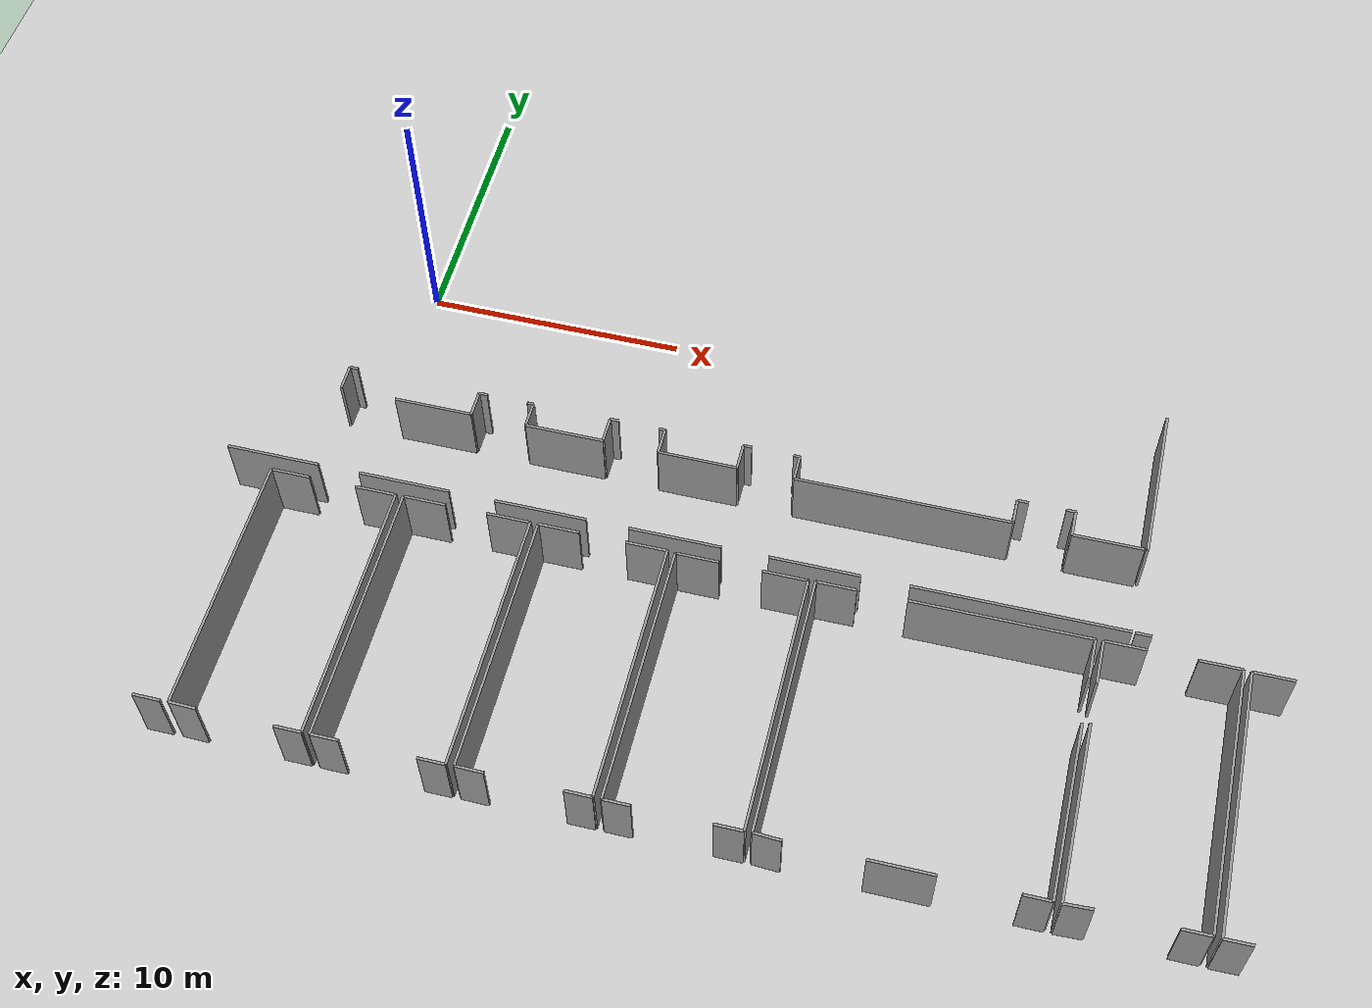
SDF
<sdf version="1.6">
 <world name="default">
  <model name="ground_plane">
   <static>1</static>
   <link name="link">
    <collision name="collision">
     <geometry><plane><normal>0 0 1</normal><size>100 100</size></plane></geometry>
     <surface><friction><ode><mu>100</mu><mu2>50</mu2></ode></friction></surface>
    </collision>
    <visual name="visual">
     <cast_shadows>0</cast_shadows>
     <geometry><plane><normal>0 0 1</normal><size>100 100</size></plane></geometry>
     <material>
      <script><uri>file://media/materials/scripts/gazebo.material</uri><name>Gazebo/Grey</name></script>
     </material>
    </visual>
   </link>
  </model>
  <model name="50055640">
   <static>1</static>
   <link name="Wall_182">
    <collision name="Wall_182_Collision">
     <geometry><box><size>0.993197624245 0.1 2.5</size></box></geometry>
     <pose>0.496598812122 0 1.25 0 0 0</pose>
    </collision>
    <visual name="Wall_182_Visual">
     <pose>0.496598812122 0 1.25 0 0 0</pose>
     <geometry><box><size>0.993197624245 0.1 2.5</size></box></geometry>
     <material>
      <script><uri>file://media/materials/scripts/gazebo.material</uri><name>Gazebo/Grey</name></script>
      <ambient>1 1 1 1</ambient>
     </material>
    </visual>
    <pose>68.9960150261 -27.5451038124 0 0 0 1.57079632679</pose>
   </link>
   <link name="Wall_183">
    <collision name="Wall_183_Collision">
     <geometry><box><size>0.320067008478 0.1 2.5</size></box></geometry>
     <pose>0.160033504239 0 1.25 0 0 0</pose>
    </collision>
    <visual name="Wall_183_Visual">
     <pose>0.160033504239 0 1.25 0 0 0</pose>
     <geometry><box><size>0.320067008478 0.1 2.5</size></box></geometry>
     <material>
      <script><uri>file://media/materials/scripts/gazebo.material</uri><name>Gazebo/Grey</name></script>
      <ambient>1 1 1 1</ambient>
     </material>
    </visual>
    <pose>68.9960150261 -26.5519061881 0 0 0 0.0</pose>
   </link>
   <link name="Wall_186">
    <collision name="Wall_186_Collision">
     <geometry><box><size>3.00116757196 0.1 2.5</size></box></geometry>
     <pose>1.50058378598 0 1.25 0 0 0</pose>
    </collision>
    <visual name="Wall_186_Visual">
     <pose>1.50058378598 0 1.25 0 0 0</pose>
     <geometry><box><size>3.00116757196 0.1 2.5</size></box></geometry>
     <material>
      <script><uri>file://media/materials/scripts/gazebo.material</uri><name>Gazebo/Grey</name></script>
      <ambient>1 1 1 1</ambient>
     </material>
    </visual>
    <pose>71.1640184781 -27.5787349612 0 0 0 0.0</pose>
   </link>
   <link name="Wall_187">
    <collision name="Wall_187_Collision">
     <geometry><box><size>1.00969592365 0.1 2.5</size></box></geometry>
     <pose>0.504847961825 0 1.25 0 0 0</pose>
    </collision>
    <visual name="Wall_187_Visual">
     <pose>0.504847961825 0 1.25 0 0 0</pose>
     <geometry><box><size>1.00969592365 0.1 2.5</size></box></geometry>
     <material>
      <script><uri>file://media/materials/scripts/gazebo.material</uri><name>Gazebo/Grey</name></script>
      <ambient>1 1 1 1</ambient>
     </material>
    </visual>
    <pose>74.1651860501 -27.5787349612 0 0 0 1.57079632679</pose>
   </link>
   <link name="Wall_188">
    <collision name="Wall_188_Collision">
     <geometry><box><size>0.325397228286 0.1 2.5</size></box></geometry>
     <pose>0.162698614143 0 1.25 0 0 0</pose>
    </collision>
    <visual name="Wall_188_Visual">
     <pose>0.162698614143 0 1.25 0 0 0</pose>
     <geometry><box><size>0.325397228286 0.1 2.5</size></box></geometry>
     <material>
      <script><uri>file://media/materials/scripts/gazebo.material</uri><name>Gazebo/Grey</name></script>
      <ambient>1 1 1 1</ambient>
     </material>
    </visual>
    <pose>74.1651860501 -26.5690390375 0 0 0 0.0</pose>
   </link>
   <link name="Wall_189">
    <collision name="Wall_189_Collision">
     <geometry><box><size>0.241128991319 0.1 2.5</size></box></geometry>
     <pose>0.12056449566 0 1.25 0 0 0</pose>
    </collision>
    <visual name="Wall_189_Visual">
     <pose>0.12056449566 0 1.25 0 0 0</pose>
     <geometry><box><size>0.241128991319 0.1 2.5</size></box></geometry>
     <material>
      <script><uri>file://media/materials/scripts/gazebo.material</uri><name>Gazebo/Grey</name></script>
      <ambient>1 1 1 1</ambient>
     </material>
    </visual>
    <pose>76.0627443017 -26.5690390375 0 0 0 0.0</pose>
   </link>
   <link name="Wall_190">
    <collision name="Wall_190_Collision">
     <geometry><box><size>1.01299558353 0.1 2.5</size></box></geometry>
     <pose>0.506497791766 0 1.25 0 0 0</pose>
    </collision>
    <visual name="Wall_190_Visual">
     <pose>0.506497791766 0 1.25 0 0 0</pose>
     <geometry><box><size>1.01299558353 0.1 2.5</size></box></geometry>
     <material>
      <script><uri>file://media/materials/scripts/gazebo.material</uri><name>Gazebo/Grey</name></script>
      <ambient>1 1 1 1</ambient>
     </material>
    </visual>
    <pose>76.3038732931 -26.5690390375 0 0 0 -1.57079632679</pose>
   </link>
   <link name="Wall_191">
    <collision name="Wall_191_Collision">
     <geometry><box><size>3.00776689172 0.1 2.5</size></box></geometry>
     <pose>1.50388344586 0 1.25 0 0 0</pose>
    </collision>
    <visual name="Wall_191_Visual">
     <pose>1.50388344586 0 1.25 0 0 0</pose>
     <geometry><box><size>3.00776689172 0.1 2.5</size></box></geometry>
     <material>
      <script><uri>file://media/materials/scripts/gazebo.material</uri><name>Gazebo/Grey</name></script>
      <ambient>1 1 1 1</ambient>
     </material>
    </visual>
    <pose>76.3038732931 -27.582034621 0 0 0 0.0</pose>
   </link>
   <link name="Wall_192">
    <collision name="Wall_192_Collision">
     <geometry><box><size>1.01908726331 0.1 2.5</size></box></geometry>
     <pose>0.509543631656 0 1.25 0 0 0</pose>
    </collision>
    <visual name="Wall_192_Visual">
     <pose>0.509543631656 0 1.25 0 0 0</pose>
     <geometry><box><size>1.01908726331 0.1 2.5</size></box></geometry>
     <material>
      <script><uri>file://media/materials/scripts/gazebo.material</uri><name>Gazebo/Grey</name></script>
      <ambient>1 1 1 1</ambient>
     </material>
    </visual>
    <pose>79.3116401848 -27.582034621 0 0 0 1.57079632679</pose>
   </link>
   <link name="Wall_193">
    <collision name="Wall_193_Collision">
     <geometry><box><size>0.331488908066 0.1 2.5</size></box></geometry>
     <pose>0.165744454033 0 1.25 0 0 0</pose>
    </collision>
    <visual name="Wall_193_Visual">
     <pose>0.165744454033 0 1.25 0 0 0</pose>
     <geometry><box><size>0.331488908066 0.1 2.5</size></box></geometry>
     <material>
      <script><uri>file://media/materials/scripts/gazebo.material</uri><name>Gazebo/Grey</name></script>
      <ambient>1 1 1 1</ambient>
     </material>
    </visual>
    <pose>79.3116401848 -26.5629473577 0 0 0 0.0</pose>
   </link>
   <link name="Wall_194">
    <collision name="Wall_194_Collision">
     <geometry><box><size>0.230341641708 0.1 2.5</size></box></geometry>
     <pose>0.115170820854 0 1.25 0 0 0</pose>
    </collision>
    <visual name="Wall_194_Visual">
     <pose>0.115170820854 0 1.25 0 0 0</pose>
     <geometry><box><size>0.230341641708 0.1 2.5</size></box></geometry>
     <material>
      <script><uri>file://media/materials/scripts/gazebo.material</uri><name>Gazebo/Grey</name></script>
      <ambient>1 1 1 1</ambient>
     </material>
    </visual>
    <pose>81.2124980964 -26.5629473577 0 0 0 0.0</pose>
   </link>
   <link name="Wall_195">
    <collision name="Wall_195_Collision">
     <geometry><box><size>1.03203208285 0.1 2.5</size></box></geometry>
     <pose>0.516016041423 0 1.25 0 0 0</pose>
    </collision>
    <visual name="Wall_195_Visual">
     <pose>0.516016041423 0 1.25 0 0 0</pose>
     <geometry><box><size>1.03203208285 0.1 2.5</size></box></geometry>
     <material>
      <script><uri>file://media/materials/scripts/gazebo.material</uri><name>Gazebo/Grey</name></script>
      <ambient>1 1 1 1</ambient>
     </material>
    </visual>
    <pose>81.4428397381 -26.5629473577 0 0 0 -1.57079632679</pose>
   </link>
   <link name="Wall_196">
    <collision name="Wall_196_Collision">
     <geometry><box><size>3.01322402152 0.1 2.5</size></box></geometry>
     <pose>1.50661201076 0 1.25 0 0 0</pose>
    </collision>
    <visual name="Wall_196_Visual">
     <pose>1.50661201076 0 1.25 0 0 0</pose>
     <geometry><box><size>3.01322402152 0.1 2.5</size></box></geometry>
     <material>
      <script><uri>file://media/materials/scripts/gazebo.material</uri><name>Gazebo/Grey</name></script>
      <ambient>1 1 1 1</ambient>
     </material>
    </visual>
    <pose>81.4428397381 -27.5949794406 0 0 0 0.0</pose>
   </link>
   <link name="Wall_197">
    <collision name="Wall_197_Collision">
     <geometry><box><size>1.03355500279 0.1 2.5</size></box></geometry>
     <pose>0.516777501396 0 1.25 0 0 0</pose>
    </collision>
    <visual name="Wall_197_Visual">
     <pose>0.516777501396 0 1.25 0 0 0</pose>
     <geometry><box><size>1.03355500279 0.1 2.5</size></box></geometry>
     <material>
      <script><uri>file://media/materials/scripts/gazebo.material</uri><name>Gazebo/Grey</name></script>
      <ambient>1 1 1 1</ambient>
     </material>
    </visual>
    <pose>84.4560637596 -27.5949794406 0 0 0 1.57079632679</pose>
   </link>
   <link name="Wall_198">
    <collision name="Wall_198_Collision">
     <geometry><box><size>0.324381948322 0.1 2.5</size></box></geometry>
     <pose>0.162190974161 0 1.25 0 0 0</pose>
    </collision>
    <visual name="Wall_198_Visual">
     <pose>0.162190974161 0 1.25 0 0 0</pose>
     <geometry><box><size>0.324381948322 0.1 2.5</size></box></geometry>
     <material>
      <script><uri>file://media/materials/scripts/gazebo.material</uri><name>Gazebo/Grey</name></script>
      <ambient>1 1 1 1</ambient>
     </material>
    </visual>
    <pose>84.4560637596 -26.5614244378 0 0 0 0.0</pose>
   </link>
   <link name="Wall_199">
    <collision name="Wall_199_Collision">
     <geometry><box><size>0.241128991319 0.1 2.5</size></box></geometry>
     <pose>0.12056449566 0 1.25 0 0 0</pose>
    </collision>
    <visual name="Wall_199_Visual">
     <pose>0.12056449566 0 1.25 0 0 0</pose>
     <geometry><box><size>0.241128991319 0.1 2.5</size></box></geometry>
     <material>
      <script><uri>file://media/materials/scripts/gazebo.material</uri><name>Gazebo/Grey</name></script>
      <ambient>1 1 1 1</ambient>
     </material>
    </visual>
    <pose>86.3678359308 -26.5614244378 0 0 0 0.0</pose>
   </link>
   <link name="Wall_200">
    <collision name="Wall_200_Collision">
     <geometry><box><size>1.00791918371 0.1 2.5</size></box></geometry>
     <pose>0.503959591857 0 1.25 0 0 0</pose>
    </collision>
    <visual name="Wall_200_Visual">
     <pose>0.503959591857 0 1.25 0 0 0</pose>
     <geometry><box><size>1.00791918371 0.1 2.5</size></box></geometry>
     <material>
      <script><uri>file://media/materials/scripts/gazebo.material</uri><name>Gazebo/Grey</name></script>
      <ambient>1 1 1 1</ambient>
     </material>
    </visual>
    <pose>86.6089649221 -26.5614244378 0 0 0 -1.57079632679</pose>
   </link>
   <link name="Wall_201">
    <collision name="Wall_201_Collision">
     <geometry><box><size>8.14762170669 0.1 2.5</size></box></geometry>
     <pose>4.07381085334 0 1.25 0 0 0</pose>
    </collision>
    <visual name="Wall_201_Visual">
     <pose>4.07381085334 0 1.25 0 0 0</pose>
     <geometry><box><size>8.14762170669 0.1 2.5</size></box></geometry>
     <material>
      <script><uri>file://media/materials/scripts/gazebo.material</uri><name>Gazebo/Grey</name></script>
      <ambient>1 1 1 1</ambient>
     </material>
    </visual>
    <pose>86.6089649221 -27.5693436215 0 0 0 0.0</pose>
   </link>
   <link name="Wall_202">
    <collision name="Wall_202_Collision">
     <geometry><box><size>0.989897964364 0.1 2.5</size></box></geometry>
     <pose>0.494948982182 0 1.25 0 0 0</pose>
    </collision>
    <visual name="Wall_202_Visual">
     <pose>0.494948982182 0 1.25 0 0 0</pose>
     <geometry><box><size>0.989897964364 0.1 2.5</size></box></geometry>
     <material>
      <script><uri>file://media/materials/scripts/gazebo.material</uri><name>Gazebo/Grey</name></script>
      <ambient>1 1 1 1</ambient>
     </material>
    </visual>
    <pose>94.7565866288 -27.5693436215 0 0 0 1.57079632679</pose>
   </link>
   <link name="Wall_203">
    <collision name="Wall_203_Collision">
     <geometry><box><size>0.418802984923 0.1 2.5</size></box></geometry>
     <pose>0.209401492462 0 1.25 0 0 0</pose>
    </collision>
    <visual name="Wall_203_Visual">
     <pose>0.209401492462 0 1.25 0 0 0</pose>
     <geometry><box><size>0.418802984923 0.1 2.5</size></box></geometry>
     <material>
      <script><uri>file://media/materials/scripts/gazebo.material</uri><name>Gazebo/Grey</name></script>
      <ambient>1 1 1 1</ambient>
     </material>
    </visual>
    <pose>94.7565866288 -26.5794456571 0 0 0 0.0</pose>
   </link>
   <link name="Wall_204">
    <collision name="Wall_204_Collision">
     <geometry><box><size>0.35306360729 0.1 2.5</size></box></geometry>
     <pose>0.176531803645 0 1.25 0 0 0</pose>
    </collision>
    <visual name="Wall_204_Visual">
     <pose>0.176531803645 0 1.25 0 0 0</pose>
     <geometry><box><size>0.35306360729 0.1 2.5</size></box></geometry>
     <material>
      <script><uri>file://media/materials/scripts/gazebo.material</uri><name>Gazebo/Grey</name></script>
      <ambient>1 1 1 1</ambient>
     </material>
    </visual>
    <pose>96.5521092441 -26.5794456571 0 0 0 0.0</pose>
   </link>
   <link name="Wall_205">
    <collision name="Wall_205_Collision">
     <geometry><box><size>1.02073709325 0.1 2.5</size></box></geometry>
     <pose>0.510368546627 0 1.25 0 0 0</pose>
    </collision>
    <visual name="Wall_205_Visual">
     <pose>0.510368546627 0 1.25 0 0 0</pose>
     <geometry><box><size>1.02073709325 0.1 2.5</size></box></geometry>
     <material>
      <script><uri>file://media/materials/scripts/gazebo.material</uri><name>Gazebo/Grey</name></script>
      <ambient>1 1 1 1</ambient>
     </material>
    </visual>
    <pose>96.9051728514 -26.5794456571 0 0 0 -1.57079632679</pose>
   </link>
   <link name="Wall_206">
    <collision name="Wall_206_Collision">
     <geometry><box><size>2.6361744251 0.1 2.5</size></box></geometry>
     <pose>1.31808721255 0 1.25 0 0 0</pose>
    </collision>
    <visual name="Wall_206_Visual">
     <pose>1.31808721255 0 1.25 0 0 0</pose>
     <geometry><box><size>2.6361744251 0.1 2.5</size></box></geometry>
     <material>
      <script><uri>file://media/materials/scripts/gazebo.material</uri><name>Gazebo/Grey</name></script>
      <ambient>1 1 1 1</ambient>
     </material>
    </visual>
    <pose>96.9051728514 -27.6001827504 0 0 0 0.0</pose>
   </link>
   <link name="Wall_207">
    <collision name="Wall_207_Collision">
     <geometry><box><size>7.9278135946 0.1 2.5</size></box></geometry>
     <pose>3.9639067973 0 1.25 0 0 0</pose>
    </collision>
    <visual name="Wall_207_Visual">
     <pose>3.9639067973 0 1.25 0 0 0</pose>
     <geometry><box><size>7.9278135946 0.1 2.5</size></box></geometry>
     <material>
      <script><uri>file://media/materials/scripts/gazebo.material</uri><name>Gazebo/Grey</name></script>
      <ambient>1 1 1 1</ambient>
     </material>
    </visual>
    <pose>99.5413472765 -31.1096248541 0 0 0 3.14159265359</pose>
   </link>
   <link name="Wall_208">
    <collision name="Wall_208_Collision">
     <geometry><box><size>3.37948626834 0.1 2.5</size></box></geometry>
     <pose>1.68974313417 0 1.25 0 0 0</pose>
    </collision>
    <visual name="Wall_208_Visual">
     <pose>1.68974313417 0 1.25 0 0 0</pose>
     <geometry><box><size>3.37948626834 0.1 2.5</size></box></geometry>
     <material>
      <script><uri>file://media/materials/scripts/gazebo.material</uri><name>Gazebo/Grey</name></script>
      <ambient>1 1 1 1</ambient>
     </material>
    </visual>
    <pose>89.8361591959 -31.1096248541 0 0 0 3.14159265359</pose>
   </link>
   <link name="Wall_209">
    <collision name="Wall_209_Collision">
     <geometry><box><size>3.45588608559 0.1 2.5</size></box></geometry>
     <pose>1.72794304279 0 1.25 0 0 0</pose>
    </collision>
    <visual name="Wall_209_Visual">
     <pose>1.72794304279 0 1.25 0 0 0</pose>
     <geometry><box><size>3.45588608559 0.1 2.5</size></box></geometry>
     <material>
      <script><uri>file://media/materials/scripts/gazebo.material</uri><name>Gazebo/Grey</name></script>
      <ambient>1 1 1 1</ambient>
     </material>
    </visual>
    <pose>84.7015076907 -31.1096248541 0 0 0 3.14159265359</pose>
   </link>
   <link name="Wall_210">
    <collision name="Wall_210_Collision">
     <geometry><box><size>3.47098837504 0.1 2.5</size></box></geometry>
     <pose>1.73549418752 0 1.25 0 0 0</pose>
    </collision>
    <visual name="Wall_210_Visual">
     <pose>1.73549418752 0 1.25 0 0 0</pose>
     <geometry><box><size>3.47098837504 0.1 2.5</size></box></geometry>
     <material>
      <script><uri>file://media/materials/scripts/gazebo.material</uri><name>Gazebo/Grey</name></script>
      <ambient>1 1 1 1</ambient>
     </material>
    </visual>
    <pose>79.6492207726 -31.1096248541 0 0 0 3.14159265359</pose>
   </link>
   <link name="Wall_211">
    <collision name="Wall_211_Collision">
     <geometry><box><size>3.47961825473 0.1 2.5</size></box></geometry>
     <pose>1.73980912737 0 1.25 0 0 0</pose>
    </collision>
    <visual name="Wall_211_Visual">
     <pose>1.73980912737 0 1.25 0 0 0</pose>
     <geometry><box><size>3.47961825473 0.1 2.5</size></box></geometry>
     <material>
      <script><uri>file://media/materials/scripts/gazebo.material</uri><name>Gazebo/Grey</name></script>
      <ambient>1 1 1 1</ambient>
     </material>
    </visual>
    <pose>74.4238286207 -31.1096248541 0 0 0 3.14159265359</pose>
   </link>
   <link name="Wall_212">
    <collision name="Wall_212_Collision">
     <geometry><box><size>3.55474897203 0.1 2.5</size></box></geometry>
     <pose>1.77737448601 0 1.25 0 0 0</pose>
    </collision>
    <visual name="Wall_212_Visual">
     <pose>1.77737448601 0 1.25 0 0 0</pose>
     <geometry><box><size>3.55474897203 0.1 2.5</size></box></geometry>
     <material>
      <script><uri>file://media/materials/scripts/gazebo.material</uri><name>Gazebo/Grey</name></script>
      <ambient>1 1 1 1</ambient>
     </material>
    </visual>
    <pose>69.3587237931 -31.1096248541 0 0 0 3.14159265359</pose>
   </link>
   <link name="Wall_270">
    <collision name="Wall_270_Collision">
     <geometry><box><size>9.94910909183 0.1 2.5</size></box></geometry>
     <pose>4.97455454592 0 1.25 0 0 0</pose>
    </collision>
    <visual name="Wall_270_Visual">
     <pose>4.97455454592 0 1.25 0 0 0</pose>
     <geometry><box><size>9.94910909183 0.1 2.5</size></box></geometry>
     <material>
      <script><uri>file://media/materials/scripts/gazebo.material</uri><name>Gazebo/Grey</name></script>
      <ambient>1 1 1 1</ambient>
     </material>
    </visual>
    <pose>83.1509213666 -41.6917610031 0 0 0 1.57079632679</pose>
   </link>
   <link name="Wall_271">
    <collision name="Wall_271_Collision">
     <geometry><box><size>1.62013300168 0.1 2.5</size></box></geometry>
     <pose>0.810066500838 0 1.25 0 0 0</pose>
    </collision>
    <visual name="Wall_271_Visual">
     <pose>0.810066500838 0 1.25 0 0 0</pose>
     <geometry><box><size>1.62013300168 0.1 2.5</size></box></geometry>
     <material>
      <script><uri>file://media/materials/scripts/gazebo.material</uri><name>Gazebo/Grey</name></script>
      <ambient>1 1 1 1</ambient>
     </material>
    </visual>
    <pose>83.1509213666 -31.7426519113 0 0 0 0.0</pose>
   </link>
   <link name="Wall_272">
    <collision name="Wall_272_Collision">
     <geometry><box><size>1.68841057922 0.1 2.5</size></box></geometry>
     <pose>0.844205289609 0 1.25 0 0 0</pose>
    </collision>
    <visual name="Wall_272_Visual">
     <pose>0.844205289609 0 1.25 0 0 0</pose>
     <geometry><box><size>1.68841057922 0.1 2.5</size></box></geometry>
     <material>
      <script><uri>file://media/materials/scripts/gazebo.material</uri><name>Gazebo/Grey</name></script>
      <ambient>1 1 1 1</ambient>
     </material>
    </visual>
    <pose>86.3551449312 -31.7426519113 0 0 0 0.0</pose>
   </link>
   <link name="Wall_273">
    <collision name="Wall_273_Collision">
     <geometry><box><size>9.9501243718 0.1 2.5</size></box></geometry>
     <pose>4.9750621859 0 1.25 0 0 0</pose>
    </collision>
    <visual name="Wall_273_Visual">
     <pose>4.9750621859 0 1.25 0 0 0</pose>
     <geometry><box><size>9.9501243718 0.1 2.5</size></box></geometry>
     <material>
      <script><uri>file://media/materials/scripts/gazebo.material</uri><name>Gazebo/Grey</name></script>
      <ambient>1 1 1 1</ambient>
     </material>
    </visual>
    <pose>88.0435555104 -31.7426519113 0 0 0 -1.57079632679</pose>
   </link>
   <link name="Wall_274">
    <collision name="Wall_274_Collision">
     <geometry><box><size>1.07035890147 0.1 2.5</size></box></geometry>
     <pose>0.535179450734 0 1.25 0 0 0</pose>
    </collision>
    <visual name="Wall_274_Visual">
     <pose>0.535179450734 0 1.25 0 0 0</pose>
     <geometry><box><size>1.07035890147 0.1 2.5</size></box></geometry>
     <material>
      <script><uri>file://media/materials/scripts/gazebo.material</uri><name>Gazebo/Grey</name></script>
      <ambient>1 1 1 1</ambient>
     </material>
    </visual>
    <pose>88.0435555104 -41.6927762831 0 0 0 3.14159265359</pose>
   </link>
   <link name="Wall_275">
    <collision name="Wall_275_Collision">
     <geometry><box><size>1.00817351492 0.1 2.5</size></box></geometry>
     <pose>0.504086757462 0 1.25 0 0 0</pose>
    </collision>
    <visual name="Wall_275_Visual">
     <pose>0.504086757462 0 1.25 0 0 0</pose>
     <geometry><box><size>1.00817351492 0.1 2.5</size></box></geometry>
     <material>
      <script><uri>file://media/materials/scripts/gazebo.material</uri><name>Gazebo/Grey</name></script>
      <ambient>1 1 1 1</ambient>
     </material>
    </visual>
    <pose>84.1590943703 -41.6927762831 0 0 0 3.14058560458</pose>
   </link>
   <link name="Wall_276">
    <collision name="Wall_276_Collision">
     <geometry><box><size>9.97004924108 0.1 2.5</size></box></geometry>
     <pose>4.98502462054 0 1.25 0 0 0</pose>
    </collision>
    <visual name="Wall_276_Visual">
     <pose>4.98502462054 0 1.25 0 0 0</pose>
     <geometry><box><size>9.97004924108 0.1 2.5</size></box></geometry>
     <material>
      <script><uri>file://media/materials/scripts/gazebo.material</uri><name>Gazebo/Grey</name></script>
      <ambient>1 1 1 1</ambient>
     </material>
    </visual>
    <pose>78.0044672318 -41.6817351135 0 0 0 1.57079632679</pose>
   </link>
   <link name="Wall_277">
    <collision name="Wall_277_Collision">
     <geometry><box><size>1.55756637393 0.1 2.5</size></box></geometry>
     <pose>0.778783186964 0 1.25 0 0 0</pose>
    </collision>
    <visual name="Wall_277_Visual">
     <pose>0.778783186964 0 1.25 0 0 0</pose>
     <geometry><box><size>1.55756637393 0.1 2.5</size></box></geometry>
     <material>
      <script><uri>file://media/materials/scripts/gazebo.material</uri><name>Gazebo/Grey</name></script>
      <ambient>1 1 1 1</ambient>
     </material>
    </visual>
    <pose>78.0044672318 -31.7116858724 0 0 0 0.0</pose>
   </link>
   <link name="Wall_278">
    <collision name="Wall_278_Collision">
     <geometry><box><size>1.5528707041 0.1 2.5</size></box></geometry>
     <pose>0.776435352048 0 1.25 0 0 0</pose>
    </collision>
    <visual name="Wall_278_Visual">
     <pose>0.776435352048 0 1.25 0 0 0</pose>
     <geometry><box><size>1.5528707041 0.1 2.5</size></box></geometry>
     <material>
      <script><uri>file://media/materials/scripts/gazebo.material</uri><name>Gazebo/Grey</name></script>
      <ambient>1 1 1 1</ambient>
     </material>
    </visual>
    <pose>81.2975277933 -31.7116858724 0 0 0 0.0</pose>
   </link>
   <link name="Wall_279">
    <collision name="Wall_279_Collision">
     <geometry><box><size>9.98312097061 0.1 2.5</size></box></geometry>
     <pose>4.9915604853 0 1.25 0 0 0</pose>
    </collision>
    <visual name="Wall_279_Visual">
     <pose>4.9915604853 0 1.25 0 0 0</pose>
     <geometry><box><size>9.98312097061 0.1 2.5</size></box></geometry>
     <material>
      <script><uri>file://media/materials/scripts/gazebo.material</uri><name>Gazebo/Grey</name></script>
      <ambient>1 1 1 1</ambient>
     </material>
    </visual>
    <pose>82.8503984974 -31.7116858724 0 0 0 -1.57079632679</pose>
   </link>
   <link name="Wall_280">
    <collision name="Wall_280_Collision">
     <geometry><box><size>1.01489923346 0.1 2.5</size></box></geometry>
     <pose>0.507449616732 0 1.25 0 0 0</pose>
    </collision>
    <visual name="Wall_280_Visual">
     <pose>0.507449616732 0 1.25 0 0 0</pose>
     <geometry><box><size>1.01489923346 0.1 2.5</size></box></geometry>
     <material>
      <script><uri>file://media/materials/scripts/gazebo.material</uri><name>Gazebo/Grey</name></script>
      <ambient>1 1 1 1</ambient>
     </material>
    </visual>
    <pose>82.8503984974 -41.694806843 0 0 0 3.14159265359</pose>
   </link>
   <link name="Wall_281">
    <collision name="Wall_281_Collision">
     <geometry><box><size>1.04213995612 0.1 2.5</size></box></geometry>
     <pose>0.521069978058 0 1.25 0 0 0</pose>
    </collision>
    <visual name="Wall_281_Visual">
     <pose>0.521069978058 0 1.25 0 0 0</pose>
     <geometry><box><size>1.04213995612 0.1 2.5</size></box></geometry>
     <material>
      <script><uri>file://media/materials/scripts/gazebo.material</uri><name>Gazebo/Grey</name></script>
      <ambient>1 1 1 1</ambient>
     </material>
    </visual>
    <pose>79.0465252043 -41.694806843 0 0 0 3.1290491634</pose>
   </link>
   <link name="Wall_282">
    <collision name="Wall_282_Collision">
     <geometry><box><size>9.99098939032 0.1 2.5</size></box></geometry>
     <pose>4.99549469516 0 1.25 0 0 0</pose>
    </collision>
    <visual name="Wall_282_Visual">
     <pose>4.99549469516 0 1.25 0 0 0</pose>
     <geometry><box><size>9.99098939032 0.1 2.5</size></box></geometry>
     <material>
      <script><uri>file://media/materials/scripts/gazebo.material</uri><name>Gazebo/Grey</name></script>
      <ambient>1 1 1 1</ambient>
     </material>
    </visual>
    <pose>72.8652469669 -41.7026752627 0 0 0 1.57079632679</pose>
   </link>
   <link name="Wall_283">
    <collision name="Wall_283_Collision">
     <geometry><box><size>1.62038682167 0.1 2.5</size></box></geometry>
     <pose>0.810193410833 0 1.25 0 0 0</pose>
    </collision>
    <visual name="Wall_283_Visual">
     <pose>0.810193410833 0 1.25 0 0 0</pose>
     <geometry><box><size>1.62038682167 0.1 2.5</size></box></geometry>
     <material>
      <script><uri>file://media/materials/scripts/gazebo.material</uri><name>Gazebo/Grey</name></script>
      <ambient>1 1 1 1</ambient>
     </material>
    </visual>
    <pose>72.8652469669 -31.7116858724 0 0 0 0.0</pose>
   </link>
   <link name="Wall_284">
    <collision name="Wall_284_Collision">
     <geometry><box><size>1.65439870044 0.1 2.5</size></box></geometry>
     <pose>0.827199350221 0 1.25 0 0 0</pose>
    </collision>
    <visual name="Wall_284_Visual">
     <pose>0.827199350221 0 1.25 0 0 0</pose>
     <geometry><box><size>1.65439870044 0.1 2.5</size></box></geometry>
     <material>
      <script><uri>file://media/materials/scripts/gazebo.material</uri><name>Gazebo/Grey</name></script>
      <ambient>1 1 1 1</ambient>
     </material>
    </visual>
    <pose>76.0586831819 -31.7116858724 0 0 0 0.0</pose>
   </link>
   <link name="Wall_285">
    <collision name="Wall_285_Collision">
     <geometry><box><size>9.98946647038 0.1 2.5</size></box></geometry>
     <pose>4.99473323519 0 1.25 0 0 0</pose>
    </collision>
    <visual name="Wall_285_Visual">
     <pose>4.99473323519 0 1.25 0 0 0</pose>
     <geometry><box><size>9.98946647038 0.1 2.5</size></box></geometry>
     <material>
      <script><uri>file://media/materials/scripts/gazebo.material</uri><name>Gazebo/Grey</name></script>
      <ambient>1 1 1 1</ambient>
     </material>
    </visual>
    <pose>77.7130818823 -31.7116858724 0 0 0 -1.57079632679</pose>
   </link>
   <link name="Wall_286">
    <collision name="Wall_286_Collision">
     <geometry><box><size>1.01997563328 0.1 2.5</size></box></geometry>
     <pose>0.50998781664 0 1.25 0 0 0</pose>
    </collision>
    <visual name="Wall_286_Visual">
     <pose>0.50998781664 0 1.25 0 0 0</pose>
     <geometry><box><size>1.01997563328 0.1 2.5</size></box></geometry>
     <material>
      <script><uri>file://media/materials/scripts/gazebo.material</uri><name>Gazebo/Grey</name></script>
      <ambient>1 1 1 1</ambient>
     </material>
    </visual>
    <pose>77.7130818823 -41.7011523428 0 0 0 3.14159265359</pose>
   </link>
   <link name="Wall_287">
    <collision name="Wall_287_Collision">
     <geometry><box><size>1.03507904308 0.1 2.5</size></box></geometry>
     <pose>0.51753952154 0 1.25 0 0 0</pose>
    </collision>
    <visual name="Wall_287_Visual">
     <pose>0.51753952154 0 1.25 0 0 0</pose>
     <geometry><box><size>1.03507904308 0.1 2.5</size></box></geometry>
     <material>
      <script><uri>file://media/materials/scripts/gazebo.material</uri><name>Gazebo/Grey</name></script>
      <ambient>1 1 1 1</ambient>
     </material>
    </visual>
    <pose>73.9003248896 -41.7011523428 0 0 0 -3.14012134519</pose>
   </link>
   <link name="Wall_288">
    <collision name="Wall_288_Collision">
     <geometry><box><size>9.96091172141 0.1 2.5</size></box></geometry>
     <pose>4.9804558607 0 1.25 0 0 0</pose>
    </collision>
    <visual name="Wall_288_Visual">
     <pose>4.9804558607 0 1.25 0 0 0</pose>
     <geometry><box><size>9.96091172141 0.1 2.5</size></box></geometry>
     <material>
      <script><uri>file://media/materials/scripts/gazebo.material</uri><name>Gazebo/Grey</name></script>
      <ambient>1 1 1 1</ambient>
     </material>
    </visual>
    <pose>67.7394791614 -41.6822427534 0 0 0 1.57079632679</pose>
   </link>
   <link name="Wall_289">
    <collision name="Wall_289_Collision">
     <geometry><box><size>1.50654855576 0.1 2.5</size></box></geometry>
     <pose>0.753274277882 0 1.25 0 0 0</pose>
    </collision>
    <visual name="Wall_289_Visual">
     <pose>0.753274277882 0 1.25 0 0 0</pose>
     <geometry><box><size>1.50654855576 0.1 2.5</size></box></geometry>
     <material>
      <script><uri>file://media/materials/scripts/gazebo.material</uri><name>Gazebo/Grey</name></script>
      <ambient>1 1 1 1</ambient>
     </material>
    </visual>
    <pose>67.7394791614 -31.721331032 0 0 0 0.0</pose>
   </link>
   <link name="Wall_290">
    <collision name="Wall_290_Collision">
     <geometry><box><size>1.55452053404 0.1 2.5</size></box></geometry>
     <pose>0.777260267019 0 1.25 0 0 0</pose>
    </collision>
    <visual name="Wall_290_Visual">
     <pose>0.777260267019 0 1.25 0 0 0</pose>
     <geometry><box><size>1.55452053404 0.1 2.5</size></box></geometry>
     <material>
      <script><uri>file://media/materials/scripts/gazebo.material</uri><name>Gazebo/Grey</name></script>
      <ambient>1 1 1 1</ambient>
     </material>
    </visual>
    <pose>71.0213716432 -31.721331032 0 0 0 0.0</pose>
   </link>
   <link name="Wall_291">
    <collision name="Wall_291_Collision">
     <geometry><box><size>9.98464389055 0.1 2.5</size></box></geometry>
     <pose>4.99232194528 0 1.25 0 0 0</pose>
    </collision>
    <visual name="Wall_291_Visual">
     <pose>4.99232194528 0 1.25 0 0 0</pose>
     <geometry><box><size>9.98464389055 0.1 2.5</size></box></geometry>
     <material>
      <script><uri>file://media/materials/scripts/gazebo.material</uri><name>Gazebo/Grey</name></script>
      <ambient>1 1 1 1</ambient>
     </material>
    </visual>
    <pose>72.5758921773 -31.721331032 0 0 0 -1.57079632679</pose>
   </link>
   <link name="Wall_292">
    <collision name="Wall_292_Collision">
     <geometry><box><size>1.02264074318 0.1 2.5</size></box></geometry>
     <pose>0.511320371592 0 1.25 0 0 0</pose>
    </collision>
    <visual name="Wall_292_Visual">
     <pose>0.511320371592 0 1.25 0 0 0</pose>
     <geometry><box><size>1.02264074318 0.1 2.5</size></box></geometry>
     <material>
      <script><uri>file://media/materials/scripts/gazebo.material</uri><name>Gazebo/Grey</name></script>
      <ambient>1 1 1 1</ambient>
     </material>
    </visual>
    <pose>72.5758921773 -41.7059749226 0 0 0 3.14159265359</pose>
   </link>
   <link name="Wall_293">
    <collision name="Wall_293_Collision">
     <geometry><box><size>1.01035541374 0.1 2.5</size></box></geometry>
     <pose>0.50517770687 0 1.25 0 0 0</pose>
    </collision>
    <visual name="Wall_293_Visual">
     <pose>0.50517770687 0 1.25 0 0 0</pose>
     <geometry><box><size>1.01035541374 0.1 2.5</size></box></geometry>
     <material>
      <script><uri>file://media/materials/scripts/gazebo.material</uri><name>Gazebo/Grey</name></script>
      <ambient>1 1 1 1</ambient>
     </material>
    </visual>
    <pose>68.749555815 -41.7059749226 0 0 0 3.11810156159</pose>
   </link>
   <link name="Wall_298">
    <collision name="Wall_298_Collision">
     <geometry><box><size>1.0138839535 0.1 2.5</size></box></geometry>
     <pose>0.50694197675 0 1.25 0 0 0</pose>
    </collision>
    <visual name="Wall_298_Visual">
     <pose>0.50694197675 0 1.25 0 0 0</pose>
     <geometry><box><size>1.0138839535 0.1 2.5</size></box></geometry>
     <material>
      <script><uri>file://media/materials/scripts/gazebo.material</uri><name>Gazebo/Grey</name></script>
      <ambient>1 1 1 1</ambient>
     </material>
    </visual>
    <pose>67.4290573126 -41.7014061627 0 0 0 3.14159265359</pose>
   </link>
   <link name="Wall_312">
    <collision name="Wall_312_Collision">
     <geometry><box><size>6.00906137367 0.1 2.5</size></box></geometry>
     <pose>3.00453068684 0 1.25 0 0 0</pose>
    </collision>
    <visual name="Wall_312_Visual">
     <pose>3.00453068684 0 1.25 0 0 0</pose>
     <geometry><box><size>6.00906137367 0.1 2.5</size></box></geometry>
     <material>
      <script><uri>file://media/materials/scripts/gazebo.material</uri><name>Gazebo/Grey</name></script>
      <ambient>1 1 1 1</ambient>
     </material>
    </visual>
    <pose>99.6493476826 -27.5967561805 0 0 0 1.57079632679</pose>
   </link>
   <link name="Wall_322">
    <collision name="Wall_322_Collision">
     <geometry><box><size>0.582897733356 0.1 2.5</size></box></geometry>
     <pose>0.291448866678 0 1.25 0 0 0</pose>
    </collision>
    <visual name="Wall_322_Visual">
     <pose>0.291448866678 0 1.25 0 0 0</pose>
     <geometry><box><size>0.582897733356 0.1 2.5</size></box></geometry>
     <material>
      <script><uri>file://media/materials/scripts/gazebo.material</uri><name>Gazebo/Grey</name></script>
      <ambient>1 1 1 1</ambient>
     </material>
    </visual>
    <pose>100.232245292 -31.1251078735 0 0 0 3.14093948582</pose>
   </link>
   <link name="Wall_331">
    <collision name="Wall_331_Collision">
     <geometry><box><size>9.97817148079 0.1 2.5</size></box></geometry>
     <pose>4.98908574039 0 1.25 0 0 0</pose>
    </collision>
    <visual name="Wall_331_Visual">
     <pose>4.98908574039 0 1.25 0 0 0</pose>
     <geometry><box><size>9.97817148079 0.1 2.5</size></box></geometry>
     <material>
      <script><uri>file://media/materials/scripts/gazebo.material</uri><name>Gazebo/Grey</name></script>
      <ambient>1 1 1 1</ambient>
     </material>
    </visual>
    <pose>103.763262095 -41.7059749226 0 0 0 1.57079632679</pose>
   </link>
   <link name="Wall_332">
    <collision name="Wall_332_Collision">
     <geometry><box><size>1.52304685517 0.1 2.5</size></box></geometry>
     <pose>0.761523427585 0 1.25 0 0 0</pose>
    </collision>
    <visual name="Wall_332_Visual">
     <pose>0.761523427585 0 1.25 0 0 0</pose>
     <geometry><box><size>1.52304685517 0.1 2.5</size></box></geometry>
     <material>
      <script><uri>file://media/materials/scripts/gazebo.material</uri><name>Gazebo/Grey</name></script>
      <ambient>1 1 1 1</ambient>
     </material>
    </visual>
    <pose>103.763262095 -31.7278034418 0 0 0 0.0</pose>
   </link>
   <link name="Wall_336">
    <collision name="Wall_336_Collision">
     <geometry><box><size>1.027274422 0.1 2.5</size></box></geometry>
     <pose>0.513637211001 0 1.25 0 0 0</pose>
    </collision>
    <visual name="Wall_336_Visual">
     <pose>0.513637211001 0 1.25 0 0 0</pose>
     <geometry><box><size>1.027274422 0.1 2.5</size></box></geometry>
     <material>
      <script><uri>file://media/materials/scripts/gazebo.material</uri><name>Gazebo/Grey</name></script>
      <ambient>1 1 1 1</ambient>
     </material>
    </visual>
    <pose>104.790471598 -41.694426113 0 0 0 -3.13035023129</pose>
   </link>
   <link name="Wall_337">
    <collision name="Wall_337_Collision">
     <geometry><box><size>6.71087364841 0.1 2.5</size></box></geometry>
     <pose>3.3554368242 0 1.25 0 0 0</pose>
    </collision>
    <visual name="Wall_337_Visual">
     <pose>3.3554368242 0 1.25 0 0 0</pose>
     <geometry><box><size>6.71087364841 0.1 2.5</size></box></geometry>
     <material>
      <script><uri>file://media/materials/scripts/gazebo.material</uri><name>Gazebo/Grey</name></script>
      <ambient>1 1 1 1</ambient>
     </material>
    </visual>
    <pose>98.6006903904 -41.7332605716 0 0 0 1.57079632679</pose>
   </link>
   <link name="Wall_338">
    <collision name="Wall_338_Collision">
     <geometry><box><size>1.73562109752 0.1 2.5</size></box></geometry>
     <pose>0.867810548759 0 1.25 0 0 0</pose>
    </collision>
    <visual name="Wall_338_Visual">
     <pose>0.867810548759 0 1.25 0 0 0</pose>
     <geometry><box><size>1.73562109752 0.1 2.5</size></box></geometry>
     <material>
      <script><uri>file://media/materials/scripts/gazebo.material</uri><name>Gazebo/Grey</name></script>
      <ambient>1 1 1 1</ambient>
     </material>
    </visual>
    <pose>98.6006903904 -33.44489568 0 0 0 1.57079632679</pose>
   </link>
   <link name="Wall_339">
    <collision name="Wall_339_Collision">
     <geometry><box><size>1.54106807452 0.1 2.5</size></box></geometry>
     <pose>0.770534037261 0 1.25 0 0 0</pose>
    </collision>
    <visual name="Wall_339_Visual">
     <pose>0.770534037261 0 1.25 0 0 0</pose>
     <geometry><box><size>1.54106807452 0.1 2.5</size></box></geometry>
     <material>
      <script><uri>file://media/materials/scripts/gazebo.material</uri><name>Gazebo/Grey</name></script>
      <ambient>1 1 1 1</ambient>
     </material>
    </visual>
    <pose>98.6006903904 -31.7092745825 0 0 0 0.0</pose>
   </link>
   <link name="Wall_340">
    <collision name="Wall_340_Collision">
     <geometry><box><size>1.57622214326 0.1 2.5</size></box></geometry>
     <pose>0.788111071628 0 1.25 0 0 0</pose>
    </collision>
    <visual name="Wall_340_Visual">
     <pose>0.788111071628 0 1.25 0 0 0</pose>
     <geometry><box><size>1.57622214326 0.1 2.5</size></box></geometry>
     <material>
      <script><uri>file://media/materials/scripts/gazebo.material</uri><name>Gazebo/Grey</name></script>
      <ambient>1 1 1 1</ambient>
     </material>
    </visual>
    <pose>101.908599421 -31.7092745825 0 0 0 0.0</pose>
   </link>
   <link name="Wall_341">
    <collision name="Wall_341_Collision">
     <geometry><box><size>9.98007513072 0.1 2.5</size></box></geometry>
     <pose>4.99003756536 0 1.25 0 0 0</pose>
    </collision>
    <visual name="Wall_341_Visual">
     <pose>4.99003756536 0 1.25 0 0 0</pose>
     <geometry><box><size>9.98007513072 0.1 2.5</size></box></geometry>
     <material>
      <script><uri>file://media/materials/scripts/gazebo.material</uri><name>Gazebo/Grey</name></script>
      <ambient>1 1 1 1</ambient>
     </material>
    </visual>
    <pose>103.484821565 -31.7092745825 0 0 0 -1.57079632679</pose>
   </link>
   <link name="Wall_342">
    <collision name="Wall_342_Collision">
     <geometry><box><size>1.05677953196 0.1 2.5</size></box></geometry>
     <pose>0.528389765978 0 1.25 0 0 0</pose>
    </collision>
    <visual name="Wall_342_Visual">
     <pose>0.528389765978 0 1.25 0 0 0</pose>
     <geometry><box><size>1.05677953196 0.1 2.5</size></box></geometry>
     <material>
      <script><uri>file://media/materials/scripts/gazebo.material</uri><name>Gazebo/Grey</name></script>
      <ambient>1 1 1 1</ambient>
     </material>
    </visual>
    <pose>103.484821565 -41.6893497132 0 0 0 3.14159265359</pose>
   </link>
   <link name="Wall_343">
    <collision name="Wall_343_Collision">
     <geometry><box><size>1.04120757118 0.1 2.5</size></box></geometry>
     <pose>0.52060378559 0 1.25 0 0 0</pose>
    </collision>
    <visual name="Wall_343_Visual">
     <pose>0.52060378559 0 1.25 0 0 0</pose>
     <geometry><box><size>1.04120757118 0.1 2.5</size></box></geometry>
     <material>
      <script><uri>file://media/materials/scripts/gazebo.material</uri><name>Gazebo/Grey</name></script>
      <ambient>1 1 1 1</ambient>
     </material>
    </visual>
    <pose>99.6409716229 -41.6893497132 0 0 0 -3.09940713128</pose>
   </link>
   <link name="Wall_344">
    <collision name="Wall_344_Collision">
     <geometry><box><size>9.95596223159 0.1 2.5</size></box></geometry>
     <pose>4.97798111579 0 1.25 0 0 0</pose>
    </collision>
    <visual name="Wall_344_Visual">
     <pose>4.97798111579 0 1.25 0 0 0</pose>
     <geometry><box><size>9.95596223159 0.1 2.5</size></box></geometry>
     <material>
      <script><uri>file://media/materials/scripts/gazebo.material</uri><name>Gazebo/Grey</name></script>
      <ambient>1 1 1 1</ambient>
     </material>
    </visual>
    <pose>88.306386111 -41.6734859638 0 0 0 1.57079632679</pose>
   </link>
   <link name="Wall_345">
    <collision name="Wall_345_Collision">
     <geometry><box><size>1.50477181583 0.1 2.5</size></box></geometry>
     <pose>0.752385907914 0 1.25 0 0 0</pose>
    </collision>
    <visual name="Wall_345_Visual">
     <pose>0.752385907914 0 1.25 0 0 0</pose>
     <geometry><box><size>1.50477181583 0.1 2.5</size></box></geometry>
     <material>
      <script><uri>file://media/materials/scripts/gazebo.material</uri><name>Gazebo/Grey</name></script>
      <ambient>1 1 1 1</ambient>
     </material>
    </visual>
    <pose>88.306386111 -31.7175237322 0 0 0 0.0</pose>
   </link>
   <link name="Wall_346">
    <collision name="Wall_346_Collision">
     <geometry><box><size>6.67571957967 0.1 2.5</size></box></geometry>
     <pose>3.33785978984 0 1.25 0 0 0</pose>
    </collision>
    <visual name="Wall_346_Visual">
     <pose>3.33785978984 0 1.25 0 0 0</pose>
     <geometry><box><size>6.67571957967 0.1 2.5</size></box></geometry>
     <material>
      <script><uri>file://media/materials/scripts/gazebo.material</uri><name>Gazebo/Grey</name></script>
      <ambient>1 1 1 1</ambient>
     </material>
    </visual>
    <pose>91.6469110107 -31.7175237322 0 0 0 0.0</pose>
   </link>
   <link name="Wall_347">
    <collision name="Wall_347_Collision">
     <geometry><box><size>1.58548657292 0.1 2.5</size></box></geometry>
     <pose>0.792743286461 0 1.25 0 0 0</pose>
    </collision>
    <visual name="Wall_347_Visual">
     <pose>0.792743286461 0 1.25 0 0 0</pose>
     <geometry><box><size>1.58548657292 0.1 2.5</size></box></geometry>
     <material>
      <script><uri>file://media/materials/scripts/gazebo.material</uri><name>Gazebo/Grey</name></script>
      <ambient>1 1 1 1</ambient>
     </material>
    </visual>
    <pose>98.3226305904 -31.7175237322 0 0 0 -1.57079632679</pose>
   </link>
   <link name="Wall_348">
    <collision name="Wall_348_Collision">
     <geometry><box><size>6.63675821108 0.1 2.5</size></box></geometry>
     <pose>3.31837910554 0 1.25 0 0 0</pose>
    </collision>
    <visual name="Wall_348_Visual">
     <pose>3.31837910554 0 1.25 0 0 0</pose>
     <geometry><box><size>6.63675821108 0.1 2.5</size></box></geometry>
     <material>
      <script><uri>file://media/materials/scripts/gazebo.material</uri><name>Gazebo/Grey</name></script>
      <ambient>1 1 1 1</ambient>
     </material>
    </visual>
    <pose>98.3226305904 -35.0934565206 0 0 0 -1.57079632679</pose>
   </link>
   <link name="Wall_349">
    <collision name="Wall_349_Collision">
     <geometry><box><size>1.02682877303 0.1 2.5</size></box></geometry>
     <pose>0.513414386517 0 1.25 0 0 0</pose>
    </collision>
    <visual name="Wall_349_Visual">
     <pose>0.513414386517 0 1.25 0 0 0</pose>
     <geometry><box><size>1.02682877303 0.1 2.5</size></box></geometry>
     <material>
      <script><uri>file://media/materials/scripts/gazebo.material</uri><name>Gazebo/Grey</name></script>
      <ambient>1 1 1 1</ambient>
     </material>
    </visual>
    <pose>98.3226305904 -41.7302147317 0 0 0 3.14159265359</pose>
   </link>
   <link name="Wall_350">
    <collision name="Wall_350_Collision">
     <geometry><box><size>2.35989136504 0.1 2.5</size></box></geometry>
     <pose>1.17994568252 0 1.25 0 0 0</pose>
    </collision>
    <visual name="Wall_350_Visual">
     <pose>1.17994568252 0 1.25 0 0 0</pose>
     <geometry><box><size>2.35989136504 0.1 2.5</size></box></geometry>
     <material>
      <script><uri>file://media/materials/scripts/gazebo.material</uri><name>Gazebo/Grey</name></script>
      <ambient>1 1 1 1</ambient>
     </material>
    </visual>
    <pose>94.5053048378 -41.7302147317 0 0 0 3.14159265359</pose>
   </link>
   <link name="Wall_351">
    <collision name="Wall_351_Collision">
     <geometry><box><size>1.02028483972 0.1 2.5</size></box></geometry>
     <pose>0.510142419858 0 1.25 0 0 0</pose>
    </collision>
    <visual name="Wall_351_Visual">
     <pose>0.510142419858 0 1.25 0 0 0</pose>
     <geometry><box><size>1.02028483972 0.1 2.5</size></box></geometry>
     <material>
      <script><uri>file://media/materials/scripts/gazebo.material</uri><name>Gazebo/Grey</name></script>
      <ambient>1 1 1 1</ambient>
     </material>
    </visual>
    <pose>89.3250926443 -41.7302147317 0 0 0 3.08596305329</pose>
   </link>
   <pose>-70.4 20.8977283111 0 0 0 0</pose>
  </model>
 </world>
</sdf>
